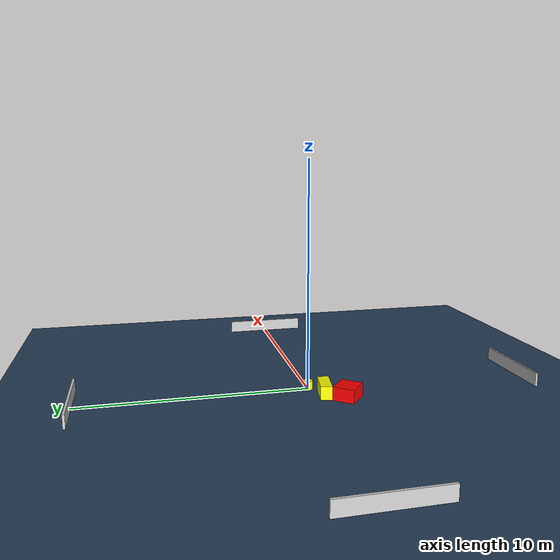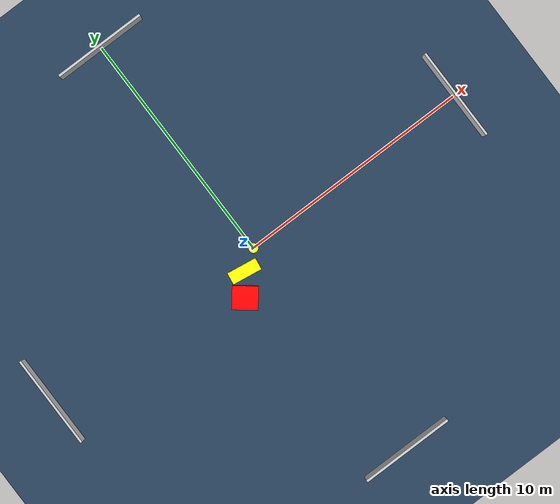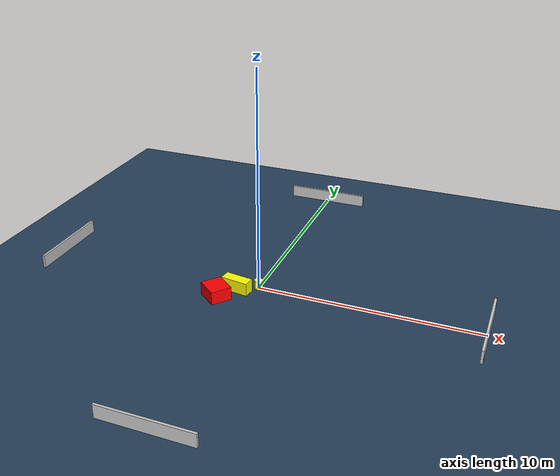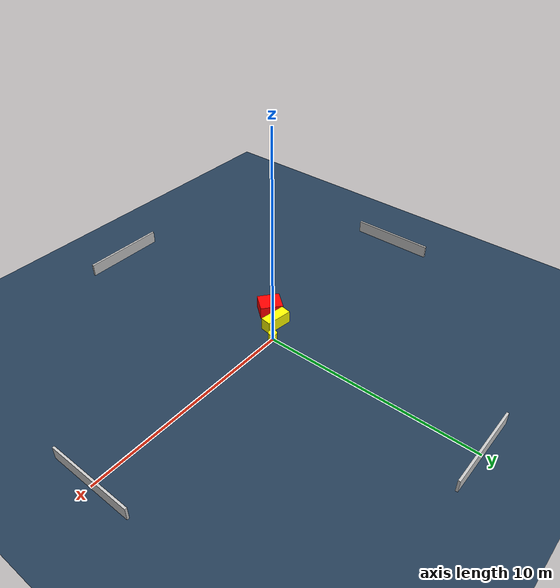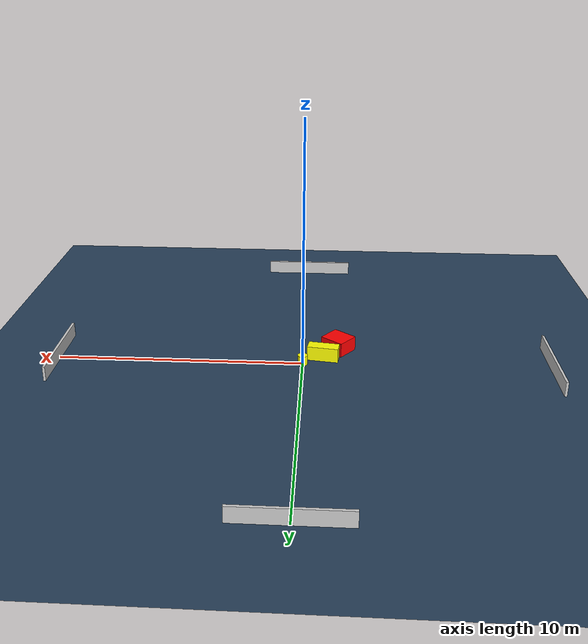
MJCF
<?xml version="1.0" ?>
<mujoco model="generated_environment">
  <option timestep="0.01" integrator="RK4" cone="elliptic"/>
  <default>
    <geom density="1"/>
  </default>
  <asset>
    <texture builtin="gradient" height="3072" name="skybox" rgb1="0.3 0.5 0.7" rgb2="0 0 0" type="skybox" width="512"/>
    <texture builtin="checker" height="300" name="groundplane" rgb1="0.2 0.3 0.4" rgb2="0.1 0.2 0.3" type="2d" width="300"/>
    <material name="groundplane" reflectance="0.2" texrepeat="5 5" texture="groundplane"/>
  </asset>
  <worldbody>
    <light dir="0 0 -1" directional="true" pos="0 0 1.5"/>
    <geom condim="3" friction="0.5 0.005 0.001" material="groundplane" name="floor" pos="0 0 0" size="0 0 0.05" type="plane"/>
    <body name="walls">
      <geom name="wall_1" condim="4" pos="-10.0 0.0 0.3" rgba="0.800000011920929 0.800000011920929 0.800000011920929 1.0" size="0.05 2.0 0.3" type="box"/>
      <geom name="wall_2" condim="4" pos="10.0 0.0 0.3" rgba="0.800000011920929 0.800000011920929 0.800000011920929 1.0" size="0.05 2.0 0.3" type="box"/>
      <geom name="wall_3" condim="4" pos="0.0 -10.0 0.3" rgba="0.800000011920929 0.800000011920929 0.800000011920929 1.0" size="2.0 0.05 0.3" type="box"/>
      <geom name="wall_4" condim="4" pos="0.0 10.0 0.3" rgba="0.800000011920929 0.800000011920929 0.800000011920929 1.0" size="2.0 0.05 0.3" type="box"/>
    </body>
    <body name="robot">
      <joint name="joint_x" type="slide" pos="0 0 0" axis="1 0 0"/>
      <joint name="joint_y" type="slide" pos="0 0 0" axis="0 1 0"/>
      <geom name="robot" type="cylinder" pos="0.0 0.0 0.2" size="0.2 0.2 0.0" mass="5.0" friction="1.0 0.005 0.0001" condim="4" rgba="1.0 1.0 0.0 1.0"/>
    </body>
    <body name="obstacle_1_movable">
      <geom name="obstacle_1_movable" condim="4" pos="-0.8331004105560479 -0.5150695577260175 0.3" euler="0 0 81.62369149510101" friction="0.0 0.005 0.001" rgba="1.0 1.0 0.0 1.0" size="0.2529709583070546 0.6313893977876308 0.3" type="box" mass="0.1"/>
      <joint type="free"/>
    </body>
    <body name="obstacle_2_static">
      <geom name="obstacle_2_static" condim="4" pos="-1.4447475549441664 -1.362984835503873 0.3" euler="0 0 141.32568833411455" friction="0.0 0.005 0.001" rgba="1.0 0.0 0.0 1.0" size="0.5263463112263557 0.47557441068210765 0.3" type="box"/>
    </body>
  </worldbody>
  <actuator>
    <motor name="actuator_x" joint="joint_x" gear="1" ctrlrange="-1 1"/>
    <motor name="actuator_y" joint="joint_y" gear="1" ctrlrange="-1 1"/>
  </actuator>
</mujoco>
